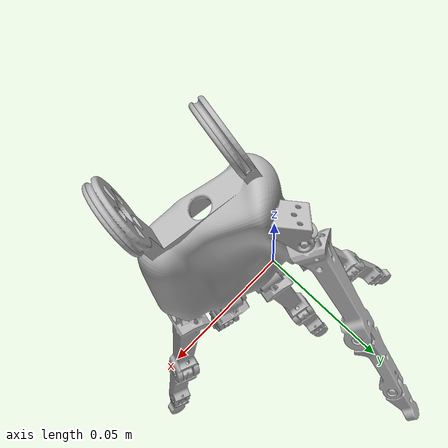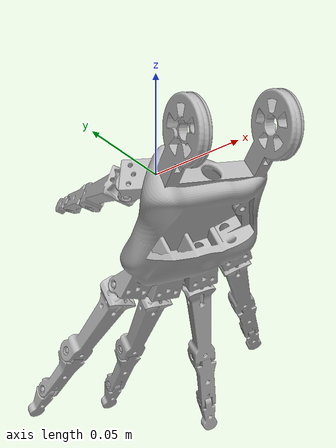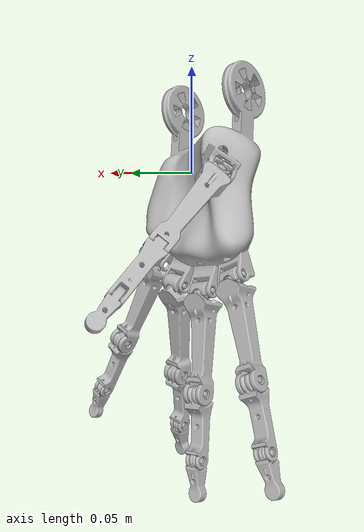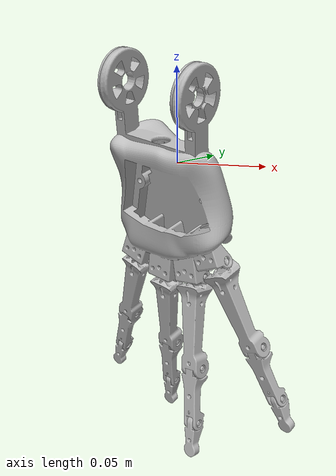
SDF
<?xml version="1.0" ?>
<sdf version="1.6">
	<model name="handsdf_little_joint">
		<link name="palm">
			<pose frame="">0.004984601526114004 -0.020451586372611737 -0.011102061228742403 0.0 -0.0 0.0</pose>
			<inertial>
				<pose frame="">0.0 0.0 0.0 0 0 0</pose>
				<mass>0.05104296674888116</mass>
				<inertia>
					<ixx>6.88767147280121e-05</ixx>
					<ixy>9.080454621344715e-06</ixy>
					<ixz>-3.329987766859981e-06</ixz>
					<iyy>6.130512140770738e-05</iyy>
					<iyz>4.068338533501781e-06</iyz>
					<izz>4.6209817158622484e-05</izz>
				</inertia>
			</inertial>
			<collision name="palm_collision">
				<geometry>
					<mesh>
						<uri>model://handsdf_little_joint/meshes/CAD/palm.stl</uri>
						<scale>0.001 0.001 0.001</scale>
					</mesh>
				</geometry>
			</collision>
			<visual name="palm_visual">
				<geometry>
					<mesh>
						<uri>model://handsdf_little_joint/meshes/CAD/palm.stl</uri>
						<scale>0.001 0.001 0.001</scale>
					</mesh>
				</geometry>
			</visual>
		</link>
		<link name="limb0_ring">
			<pose frame="">-0.004539129254911334 -0.0003668220879138213 0.0054368696911774005 0.0 -0.0 0.0</pose>
			<inertial>
				<pose frame="">0.0 0.0 0.0 0 0 0</pose>
				<mass>0.0008540175661180755</mass>
				<inertia>
					<ixx>2.954916758886377e-06</ixx>
					<ixy>1.605119337956974e-07</ixy>
					<ixz>-5.601010670979503e-07</ixz>
					<iyy>3.0782142974773858e-06</iyy>
					<iyz>8.053766686635486e-07</iyz>
					<izz>3.545731671569924e-07</izz>
				</inertia>
			</inertial>
			<collision name="limb0_ring_collision">
				<geometry>
					<mesh>
						<uri>model://handsdf_little_joint/meshes/CAD/limb0_ring.stl</uri>
						<scale>0.001 0.001 0.001</scale>
					</mesh>
				</geometry>
			</collision>
			<visual name="limb0_ring_visual">
				<geometry>
					<mesh>
						<uri>model://handsdf_little_joint/meshes/CAD/limb0_ring.stl</uri>
						<scale>0.001 0.001 0.001</scale>
					</mesh>
				</geometry>
			</visual>
		</link>
		<link name="limb1_ring">
			<pose frame="">-0.00429101528683431 -0.0016462373214088757 -0.019345291313069037 0.0 -0.0 0.0</pose>
			<inertial>
				<pose frame="">0.0 0.0 0.0 0 0 0</pose>
				<mass>0.007658532328641807</mass>
				<inertia>
					<ixx>5.5142187218362905e-05</ixx>
					<ixy>1.8813982075867667e-06</ixy>
					<ixz>-9.198141882949416e-06</ixz>
					<iyy>5.580409596394925e-05</iyy>
					<iyz>1.0823274307341091e-05</iyz>
					<izz>3.9835824924935855e-06</izz>
				</inertia>
			</inertial>
			<collision name="limb1_ring_collision">
				<geometry>
					<mesh>
						<uri>model://handsdf_little_joint/meshes/CAD/limb1_ring.stl</uri>
						<scale>0.001 0.001 0.001</scale>
					</mesh>
				</geometry>
			</collision>
			<visual name="limb1_ring_visual">
				<geometry>
					<mesh>
						<uri>model://handsdf_little_joint/meshes/CAD/limb1_ring.stl</uri>
						<scale>0.001 0.001 0.001</scale>
					</mesh>
				</geometry>
			</visual>
		</link>
		<link name="limb2_ring">
			<pose frame="">-0.0038302754690283957 -0.0035113032705045366 -0.05901680866458576 0.0 -0.0 0.0</pose>
			<inertial>
				<pose frame="">0.0 0.0 0.0 0 0 0</pose>
				<mass>0.0032495164973296822</mass>
				<inertia>
					<ixx>4.9515163556474885e-05</ixx>
					<ixy>1.1041368442102801e-06</ixy>
					<ixz>-7.298613785007262e-06</ixz>
					<iyy>4.9527692638290854e-05</iyy>
					<iyz>7.321160783007061e-06</iyz>
					<izz>2.252341984009396e-06</izz>
				</inertia>
			</inertial>
			<collision name="limb2_ring_collision">
				<geometry>
					<mesh>
						<uri>model://handsdf_little_joint/meshes/CAD/limb2_ring.stl</uri>
						<scale>0.001 0.001 0.001</scale>
					</mesh>
				</geometry>
			</collision>
			<visual name="limb2_ring_visual">
				<geometry>
					<mesh>
						<uri>model://handsdf_little_joint/meshes/CAD/limb2_ring.stl</uri>
						<scale>0.001 0.001 0.001</scale>
					</mesh>
				</geometry>
			</visual>
		</link>
		<link name="limb3_ring">
			<pose frame="">-0.0035342233075134574 -0.004990164199782871 -0.08609010682377048 0.0 -0.0 0.0</pose>
			<inertial>
				<pose frame="">0.0 0.0 0.0 0 0 0</pose>
				<mass>0.0013887432055078588</mass>
				<inertia>
					<ixx>3.135191675923352e-05</ixx>
					<ixy>5.740312301048307e-07</ixy>
					<ixz>-4.4061633164182545e-06</ixz>
					<iyy>3.124204490389505e-05</iyy>
					<iyz>4.003207017684753e-06</iyz>
					<izz>1.1638733590223661e-06</izz>
				</inertia>
			</inertial>
			<collision name="limb3_ring_collision">
				<geometry>
					<mesh>
						<uri>model://handsdf_little_joint/meshes/CAD/limb3_ring.stl</uri>
						<scale>0.001 0.001 0.001</scale>
					</mesh>
				</geometry>
			</collision>
			<visual name="limb3_ring_visual">
				<geometry>
					<mesh>
						<uri>model://handsdf_little_joint/meshes/CAD/limb3_ring.stl</uri>
						<scale>0.001 0.001 0.001</scale>
					</mesh>
				</geometry>
			</visual>
		</link>
		<link name="limb2_little">
			<pose frame="">0.00013526155536257645 -0.0004397681517196 -0.05379223216886111 0.0 -0.0 0.0</pose>
			<inertial>
				<pose frame="">0.0 0.0 0.0 0 0 0</pose>
				<mass>0.0032495809266408745</mass>
				<inertia>
					<ixx>3.706300347538381e-05</ixx>
					<ixy>1.632465112118096e-06</ixy>
					<ixz>-3.113838412584047e-06</ixz>
					<iyy>4.680450209403673e-05</iyy>
					<iyz>1.9179611153475863e-05</iyz>
					<izz>1.0326071354836933e-05</izz>
				</inertia>
			</inertial>
			<collision name="limb2_little_collision">
				<geometry>
					<mesh>
						<uri>model://handsdf_little_joint/meshes/CAD/limb2_little.stl</uri>
						<scale>0.001 0.001 0.001</scale>
					</mesh>
				</geometry>
			</collision>
			<visual name="limb2_little_visual">
				<geometry>
					<mesh>
						<uri>model://handsdf_little_joint/meshes/CAD/limb2_little.stl</uri>
						<scale>0.001 0.001 0.001</scale>
					</mesh>
				</geometry>
			</visual>
		</link>
		<link name="limb3_little">
			<pose frame="">0.0034599592882513432 0.00040926305136660936 -0.08018430986239933 0.0 -0.0 0.0</pose>
			<inertial>
				<pose frame="">0.0 0.0 0.0 0 0 0</pose>
				<mass>0.0013887322424558268</mass>
				<inertia>
					<ixx>2.387535956216425e-05</ixx>
					<ixy>4.6263297304672323e-07</ixy>
					<ixz>-9.253108353024493e-07</ixz>
					<iyy>2.9780948903665597e-05</iyy>
					<iyz>1.1898865170335488e-05</iyz>
					<izz>5.9877014374985554e-06</izz>
				</inertia>
			</inertial>
			<collision name="limb3_little_collision">
				<geometry>
					<mesh>
						<uri>model://handsdf_little_joint/meshes/CAD/limb3_little.stl</uri>
						<scale>0.001 0.001 0.001</scale>
					</mesh>
				</geometry>
			</collision>
			<visual name="limb3_little_visual">
				<geometry>
					<mesh>
						<uri>model://handsdf_little_joint/meshes/CAD/limb3_little.stl</uri>
						<scale>0.001 0.001 0.001</scale>
					</mesh>
				</geometry>
			</visual>
		</link>
		<link name="limb1_little">
			<pose frame="">-0.0047292031566071435 -0.001852416538666387 -0.015069742238488955 0.0 -0.0 0.0</pose>
			<inertial>
				<pose frame="">0.0 0.0 0.0 0 0 0</pose>
				<mass>0.007872477963678678</mass>
				<inertia>
					<ixx>4.108684866684311e-05</ixx>
					<ixy>4.789823047519311e-06</ixy>
					<ixz>-8.096322663823535e-06</ixz>
					<iyy>5.2314455255197046e-05</iyy>
					<iyz>2.2587067280915484e-05</iyz>
					<izz>1.5161020637743567e-05</izz>
				</inertia>
			</inertial>
			<collision name="limb1_little_collision">
				<geometry>
					<mesh>
						<uri>model://handsdf_little_joint/meshes/CAD/limb1_little.stl</uri>
						<scale>0.001 0.001 0.001</scale>
					</mesh>
				</geometry>
			</collision>
			<visual name="limb1_little_visual">
				<geometry>
					<mesh>
						<uri>model://handsdf_little_joint/meshes/CAD/limb1_little.stl</uri>
						<scale>0.001 0.001 0.001</scale>
					</mesh>
				</geometry>
			</visual>
		</link>
		<link name="limb0_thumb">
			<pose frame="">0.028678623050363408 0.0028113172419237283 0.02270946300735899 0.0 -0.0 0.0</pose>
			<inertial>
				<pose frame="">0.0 0.0 0.0 0 0 0</pose>
				<mass>0.0008539394855143175</mass>
				<inertia>
					<ixx>1.65419460411655e-08</ixx>
					<ixy>-1.5582638298769582e-09</ixy>
					<ixz>-1.1980629146009014e-09</ixz>
					<iyy>2.1330956514292893e-07</iyy>
					<iyz>2.0608809000839315e-08</iyz>
					<izz>2.1210532015869758e-07</izz>
				</inertia>
			</inertial>
			<collision name="limb0_thumb_collision">
				<geometry>
					<mesh>
						<uri>model://handsdf_little_joint/meshes/CAD/limb0_thumb.stl</uri>
						<scale>0.001 0.001 0.001</scale>
					</mesh>
				</geometry>
			</collision>
			<visual name="limb0_thumb_visual">
				<geometry>
					<mesh>
						<uri>model://handsdf_little_joint/meshes/CAD/limb0_thumb.stl</uri>
						<scale>0.001 0.001 0.001</scale>
					</mesh>
				</geometry>
			</visual>
		</link>
		<link name="limb1_thumb">
			<pose frame="">0.029667654903979483 0.008995597332951424 0.001151545080354291 0.0 -0.0 0.0</pose>
			<inertial>
				<pose frame="">0.0 0.0 0.0 0 0 0</pose>
				<mass>0.007658975604773872</mass>
				<inertia>
					<ixx>6.142309255749762e-06</ixx>
					<ixy>1.64821564660618e-06</ixy>
					<ixz>2.805655938853583e-06</ixz>
					<iyy>3.2755098881905906e-06</iyy>
					<iyz>-1.0949658111697038e-06</iyz>
					<izz>5.368884931167643e-06</izz>
				</inertia>
			</inertial>
			<collision name="limb1_thumb_collision">
				<geometry>
					<mesh>
						<uri>model://handsdf_little_joint/meshes/CAD/limb1_thumb.stl</uri>
						<scale>0.001 0.001 0.001</scale>
					</mesh>
				</geometry>
			</collision>
			<visual name="limb1_thumb_visual">
				<geometry>
					<mesh>
						<uri>model://handsdf_little_joint/meshes/CAD/limb1_thumb.stl</uri>
						<scale>0.001 0.001 0.001</scale>
					</mesh>
				</geometry>
			</visual>
		</link>
		<link name="limb2_thumb">
			<pose frame="">0.03149313575494694 0.018880959203335886 -0.03335283603378934 0.0 -0.0 0.0</pose>
			<inertial>
				<pose frame="">0.0 0.0 0.0 0 0 0</pose>
				<mass>0.003249549630804767</mass>
				<inertia>
					<ixx>1.316945992326289e-05</ixx>
					<ixy>1.0918687131823073e-06</ixy>
					<ixz>6.2572329512091364e-06</ixz>
					<iyy>4.766538112900225e-06</iyy>
					<iyz>-8.003429119878388e-07</iyz>
					<izz>8.744453815883072e-06</izz>
				</inertia>
			</inertial>
			<collision name="limb2_thumb_collision">
				<geometry>
					<mesh>
						<uri>model://handsdf_little_joint/meshes/CAD/limb2_thumb.stl</uri>
						<scale>0.001 0.001 0.001</scale>
					</mesh>
				</geometry>
			</collision>
			<visual name="limb2_thumb_visual">
				<geometry>
					<mesh>
						<uri>model://handsdf_little_joint/meshes/CAD/limb2_thumb.stl</uri>
						<scale>0.001 0.001 0.001</scale>
					</mesh>
				</geometry>
			</visual>
		</link>
		<link name="limb3_thumb">
			<pose frame="">0.03269025903422575 0.025525394700875323 -0.05687059153548137 0.0 -0.0 0.0</pose>
			<inertial>
				<pose frame="">0.0 0.0 0.0 0 0 0</pose>
				<mass>0.001388734475230686</mass>
				<inertia>
					<ixx>1.1235760113522968e-05</ixx>
					<ixy>3.1577711670219323e-07</ixy>
					<ixz>5.369100376425037e-06</ixz>
					<iyy>3.999262022821707e-06</iyy>
					<iyz>-2.340579167620669e-07</iyz>
					<izz>7.274227576226517e-06</izz>
				</inertia>
			</inertial>
			<collision name="limb3_thumb_collision">
				<geometry>
					<mesh>
						<uri>model://handsdf_little_joint/meshes/CAD/limb3_thumb.stl</uri>
						<scale>0.001 0.001 0.001</scale>
					</mesh>
				</geometry>
			</collision>
			<visual name="limb3_thumb_visual">
				<geometry>
					<mesh>
						<uri>model://handsdf_little_joint/meshes/CAD/limb3_thumb.stl</uri>
						<scale>0.001 0.001 0.001</scale>
					</mesh>
				</geometry>
			</visual>
		</link>
		<link name="limb0_index">
			<pose frame="">0.0029919599848585235 0.0020183478659378403 0.007894010765365203 0.0 -0.0 0.0</pose>
			<inertial>
				<pose frame="">0.0 0.0 0.0 0 0 0</pose>
				<mass>0.0008541597354660968</mass>
				<inertia>
					<ixx>2.181524289515269e-06</ixx>
					<ixy>-7.526321297728314e-08</ixy>
					<ixz>-1.81335018230354e-07</ixz>
					<iyy>2.5489233804472583e-06</iyy>
					<iyz>-9.005499643071503e-07</iyz>
					<izz>4.0661548925156065e-07</izz>
				</inertia>
			</inertial>
			<collision name="limb0_index_collision">
				<geometry>
					<mesh>
						<uri>model://handsdf_little_joint/meshes/CAD/limb0_index.stl</uri>
						<scale>0.001 0.001 0.001</scale>
					</mesh>
				</geometry>
			</collision>
			<visual name="limb0_index_visual">
				<geometry>
					<mesh>
						<uri>model://handsdf_little_joint/meshes/CAD/limb0_index.stl</uri>
						<scale>0.001 0.001 0.001</scale>
					</mesh>
				</geometry>
			</visual>
		</link>
		<link name="limb1_index">
			<pose frame="">-0.00011577624540808407 0.004303377209592056 -0.015885670423960562 0.0 -0.0 0.0</pose>
			<inertial>
				<pose frame="">0.0 0.0 0.0 0 0 0</pose>
				<mass>0.007658917100650444</mass>
				<inertia>
					<ixx>4.119292903135489e-05</ixx>
					<ixy>1.0423170862588538e-06</ixy>
					<ixz>2.4502021674558814e-06</ixz>
					<iyy>4.823186955127905e-05</iyy>
					<iyz>-1.726465837945741e-05</iyz>
					<izz>7.732441848985939e-06</izz>
				</inertia>
			</inertial>
			<collision name="limb1_index_collision">
				<geometry>
					<mesh>
						<uri>model://handsdf_little_joint/meshes/CAD/limb1_index.stl</uri>
						<scale>0.001 0.001 0.001</scale>
					</mesh>
				</geometry>
			</collision>
			<visual name="limb1_index_visual">
				<geometry>
					<mesh>
						<uri>model://handsdf_little_joint/meshes/CAD/limb1_index.stl</uri>
						<scale>0.001 0.001 0.001</scale>
					</mesh>
				</geometry>
			</visual>
		</link>
		<link name="limb2_index">
			<pose frame="">-0.00506806433829853 0.008174175653905207 -0.05386535352010406 0.0 -0.0 0.0</pose>
			<inertial>
				<pose frame="">0.0 0.0 0.0 0 0 0</pose>
				<mass>0.003249598311090094</mass>
				<inertia>
					<ixx>3.784390786695967e-05</ixx>
					<ixy>2.4885127073033454e-06</ixy>
					<ixz>5.842399424834629e-06</ixz>
					<iyy>4.3600199962235486e-05</iyy>
					<iyz>-1.5703029423510573e-05</iyz>
					<izz>7.656036647045606e-06</izz>
				</inertia>
			</inertial>
			<collision name="limb2_index_collision">
				<geometry>
					<mesh>
						<uri>model://handsdf_little_joint/meshes/CAD/limb2_index.stl</uri>
						<scale>0.001 0.001 0.001</scale>
					</mesh>
				</geometry>
			</collision>
			<visual name="limb2_index_visual">
				<geometry>
					<mesh>
						<uri>model://handsdf_little_joint/meshes/CAD/limb2_index.stl</uri>
						<scale>0.001 0.001 0.001</scale>
					</mesh>
				</geometry>
			</visual>
		</link>
		<link name="limb3_index">
			<pose frame="">-0.008464650348251558 0.010612438769244762 -0.07980788015398478 0.0 -0.0 0.0</pose>
			<inertial>
				<pose frame="">0.0 0.0 0.0 0 0 0</pose>
				<mass>0.0013887644317063248</mass>
				<inertia>
					<ixx>2.4332206617631594e-05</ixx>
					<ixy>1.9665326219483167e-06</ixy>
					<ixz>4.6056129787097686e-06</ixz>
					<iyy>2.7695215422285348e-05</iyy>
					<iyz>-9.99859303690574e-06</iyz>
					<izz>5.1843011163931765e-06</izz>
				</inertia>
			</inertial>
			<collision name="limb3_index_collision">
				<geometry>
					<mesh>
						<uri>model://handsdf_little_joint/meshes/CAD/limb3_index.stl</uri>
						<scale>0.001 0.001 0.001</scale>
					</mesh>
				</geometry>
			</collision>
			<visual name="limb3_index_visual">
				<geometry>
					<mesh>
						<uri>model://handsdf_little_joint/meshes/CAD/limb3_index.stl</uri>
						<scale>0.001 0.001 0.001</scale>
					</mesh>
				</geometry>
			</visual>
		</link>
		<link name="limb0_middle">
			<pose frame="">-0.0010005707852920617 0.0013252851129057404 0.005030067146377362 0.0 -0.0 0.0</pose>
			<inertial>
				<pose frame="">0.0 0.0 0.0 0 0 0</pose>
				<mass>0.0008540846275341209</mass>
				<inertia>
					<ixx>2.9998026815526246e-06</ixx>
					<ixy>-1.5130488392045815e-08</ixy>
					<ixz>-3.167534563800742e-07</ixz>
					<iyy>2.97891198180267e-06</iyy>
					<iyz>-1.5018474746604502e-07</iyz>
					<izz>5.599045185478959e-08</izz>
				</inertia>
			</inertial>
			<collision name="limb0_middle_collision">
				<geometry>
					<mesh>
						<uri>model://handsdf_little_joint/meshes/CAD/limb0_middle.stl</uri>
						<scale>0.001 0.001 0.001</scale>
					</mesh>
				</geometry>
			</collision>
			<visual name="limb0_middle_visual">
				<geometry>
					<mesh>
						<uri>model://handsdf_little_joint/meshes/CAD/limb0_middle.stl</uri>
						<scale>0.001 0.001 0.001</scale>
					</mesh>
				</geometry>
			</visual>
		</link>
		<link name="limb1_middle">
			<pose frame="">-0.002093046247519113 0.0032912602190693714 -0.01941735395253288 0.0 -0.0 0.0</pose>
			<inertial>
				<pose frame="">0.0 0.0 0.0 0 0 0</pose>
				<mass>0.007658427299380988</mass>
				<inertia>
					<ixx>5.3821898465792716e-05</ixx>
					<ixy>9.196368996891487e-08</ixy>
					<ixz>8.043095606228669e-07</ixz>
					<iyy>5.401986147571667e-05</iyy>
					<iyz>-4.1868935383198495e-06</iyz>
					<izz>6.19023319976134e-07</izz>
				</inertia>
			</inertial>
			<collision name="limb1_middle_collision">
				<geometry>
					<mesh>
						<uri>model://handsdf_little_joint/meshes/CAD/limb1_middle.stl</uri>
						<scale>0.001 0.001 0.001</scale>
					</mesh>
				</geometry>
			</collision>
			<visual name="limb1_middle_visual">
				<geometry>
					<mesh>
						<uri>model://handsdf_little_joint/meshes/CAD/limb1_middle.stl</uri>
						<scale>0.001 0.001 0.001</scale>
					</mesh>
				</geometry>
			</visual>
		</link>
		<link name="limb2_middle">
			<pose frame="">-0.003798690734159633 0.0066480256095722305 -0.05847269263554183 0.0 -0.0 0.0</pose>
			<inertial>
				<pose frame="">0.0 0.0 0.0 0 0 0</pose>
				<mass>0.0032495923523524206</mass>
				<inertia>
					<ixx>4.761369812236897e-05</ixx>
					<ixy>4.599979909128627e-07</ixy>
					<ixz>4.803144382964503e-06</ixz>
					<iyy>4.7546672758656653e-05</iyy>
					<iyz>-4.486660371573696e-06</iyz>
					<izz>9.619258572204316e-07</izz>
				</inertia>
			</inertial>
			<collision name="limb2_middle_collision">
				<geometry>
					<mesh>
						<uri>model://handsdf_little_joint/meshes/CAD/limb2_middle.stl</uri>
						<scale>0.001 0.001 0.001</scale>
					</mesh>
				</geometry>
			</collision>
			<visual name="limb2_middle_visual">
				<geometry>
					<mesh>
						<uri>model://handsdf_little_joint/meshes/CAD/limb2_middle.stl</uri>
						<scale>0.001 0.001 0.001</scale>
					</mesh>
				</geometry>
			</visual>
		</link>
		<link name="limb3_middle">
			<pose frame="">-0.004979246527368786 0.008735424089327452 -0.08514939864736558 0.0 -0.0 0.0</pose>
			<inertial>
				<pose frame="">0.0 0.0 0.0 0 0 0</pose>
				<mass>0.00138874251823748</mass>
				<inertia>
					<ixx>3.0114934818637196e-05</ixx>
					<ixy>4.137036509029164e-07</ixy>
					<ixz>4.032232275526246e-06</ixz>
					<iyy>2.9875445975654516e-05</iyy>
					<iyz>-3.031204468169728e-06</iyz>
					<izz>8.704378876513013e-07</izz>
				</inertia>
			</inertial>
			<collision name="limb3_middle_collision">
				<geometry>
					<mesh>
						<uri>model://handsdf_little_joint/meshes/CAD/limb3_middle.stl</uri>
						<scale>0.001 0.001 0.001</scale>
					</mesh>
				</geometry>
			</collision>
			<visual name="limb3_middle_visual">
				<geometry>
					<mesh>
						<uri>model://handsdf_little_joint/meshes/CAD/limb3_middle.stl</uri>
						<scale>0.001 0.001 0.001</scale>
					</mesh>
				</geometry>
			</visual>
		</link>
		<joint name="joint0_thumb" type="revolute">
			<parent>limb0_thumb</parent>
			<child>limb1_thumb</child>
			<pose frame="">-0.04707254233272256 -0.008286461236286747 0.002279365543837149 0 0 0</pose>
			<axis>
				<xyz>-0.6858892915424489 0.06301009669154323 0.7249728322236222</xyz>
				<limit>
					<lower>-0.3141592653589793</lower>
					<upper>0.3141592653589793</upper>
				</limit>
				<use_parent_model_frame>0</use_parent_model_frame>
			</axis>
		</joint>
		<joint name="joint1_thumb" type="revolute">
			<parent>limb1_thumb</parent>
			<child>limb2_thumb</child>
			<pose frame="">-0.0352364742491571 0.02319464294574498 0.006635434009456494 0 0 0</pose>
			<axis>
				<xyz>-0.6933027206770837 -0.3592782442559522 -0.6247003127149227</xyz>
				<limit>
					<lower>-1.9198621771937625</lower>
					<upper>-0.0</upper>
				</limit>
				<use_parent_model_frame>0</use_parent_model_frame>
			</axis>
		</joint>
		<joint name="joint2_thumb" type="revolute">
			<parent>limb2_thumb</parent>
			<child>limb3_thumb</child>
			<pose frame="">-0.033721479895762504 0.04139282484118512 0.010454575243259488 0 0 0</pose>
			<axis>
				<xyz>-0.6933027206770837 -0.3592782442559522 -0.6247003127149227</xyz>
				<limit>
					<lower>-1.2217304763960306</lower>
					<upper>-0.0</upper>
				</limit>
				<use_parent_model_frame>0</use_parent_model_frame>
			</axis>
		</joint>
		<joint name="joint0_index" type="revolute">
			<parent>limb0_index</parent>
			<child>limb1_index</child>
			<pose frame="">-0.021270161596243946 -0.011343847901591927 -0.03441368744543821 0 0 0</pose>
			<axis>
				<xyz>-0.02206827427210914 -0.9810707726476965 0.1923879682493538</xyz>
				<limit>
					<lower>-0.3141592653589793</lower>
					<upper>0.3141592653589793</upper>
				</limit>
				<use_parent_model_frame>0</use_parent_model_frame>
			</axis>
		</joint>
		<joint name="joint1_index" type="revolute">
			<parent>limb1_index</parent>
			<child>limb2_index</child>
			<pose frame="">-0.040048727408088354 0.006207552154610401 -0.03867946768994456 0 0 0</pose>
			<axis>
				<xyz>0.8982158988804239 -0.10395584540887667 -0.4270847470979925</xyz>
				<limit>
					<lower>-1.9198621771937625</lower>
					<upper>-0.0</upper>
				</limit>
				<use_parent_model_frame>0</use_parent_model_frame>
			</axis>
		</joint>
		<joint name="joint2_index" type="revolute">
			<parent>limb2_index</parent>
			<child>limb3_index</child>
			<pose frame="">-0.04738319364263051 0.013298410978903752 -0.041137416014205494 0 0 0</pose>
			<axis>
				<xyz>0.8982158988804239 -0.10395584540887667 -0.4270847470979925</xyz>
				<limit>
					<lower>-1.2217304763960306</lower>
					<upper>-0.0</upper>
				</limit>
				<use_parent_model_frame>0</use_parent_model_frame>
			</axis>
		</joint>
		<joint name="joint0_middle" type="revolute">
			<parent>limb0_middle</parent>
			<child>limb1_middle</child>
			<pose frame="">-0.0014649936655799795 -0.012380060837754161 -0.03940960128435354 0 0 0</pose>
			<axis>
				<xyz>-0.14459522599906896 -0.9616712141317322 0.23298218071062712</xyz>
				<limit>
					<lower>-0.3141592653589793</lower>
					<upper>0.3141592653589793</upper>
				</limit>
				<use_parent_model_frame>0</use_parent_model_frame>
			</axis>
		</joint>
		<joint name="joint1_middle" type="revolute">
			<parent>limb1_middle</parent>
			<child>limb2_middle</child>
			<pose frame="">-0.010951397099223428 0.004120951479165678 -0.04817841880280976 0 0 0</pose>
			<axis>
				<xyz>0.9631532961190306 -0.19075270735641842 -0.1896025654131407</xyz>
				<limit>
					<lower>-1.9198621771937625</lower>
					<upper>-0.0</upper>
				</limit>
				<use_parent_model_frame>0</use_parent_model_frame>
			</axis>
		</joint>
		<joint name="joint2_middle" type="revolute">
			<parent>limb2_middle</parent>
			<child>limb3_middle</child>
			<pose frame="">-0.012624087283465446 0.010200617380137984 -0.052123676670785 0 0 0</pose>
			<axis>
				<xyz>0.9631532961190306 -0.19075270735641842 -0.1896025654131407</xyz>
				<limit>
					<lower>-1.2217304763960306</lower>
					<upper>-0.0</upper>
				</limit>
				<use_parent_model_frame>0</use_parent_model_frame>
			</axis>
		</joint>
		<joint name="palm_ring" type="revolute">
			<parent>palm</parent>
			<child>limb0_ring</child>
			<pose frame="">0.013692663285176954 -0.009211153081474991 -0.06418923009178881 0 0 0</pose>
			<axis>
				<xyz>-0.9624533879132147 0.2645500875313659 -0.060800717771566315</xyz>
				<limit>
					<lower>-0.3490658503988659</lower>
					<upper>1.2217304763960306</upper>
				</limit>
				<use_parent_model_frame>0</use_parent_model_frame>
			</axis>
		</joint>
		<joint name="palm_middle" type="revolute">
			<parent>palm</parent>
			<child>limb0_middle</child>
			<pose frame="">0.0050999662710829 -0.008959717394368462 -0.06597798816599418 0 0 0</pose>
			<axis>
				<xyz>0.9631532961190401 -0.1907527073564135 -0.18960256541314202</xyz>
				<limit>
					<lower>-0.3490658503988659</lower>
					<upper>1.2217304763960306</upper>
				</limit>
				<use_parent_model_frame>0</use_parent_model_frame>
			</axis>
		</joint>
		<joint name="palm_index" type="revolute">
			<parent>palm</parent>
			<child>limb0_index</child>
			<pose frame="">-0.03104831224529698 -0.005335937399428218 -0.0555673969362763 0 0 0</pose>
			<axis>
				<xyz>-0.8982158988804323 0.10395584540887517 0.42708474709799904</xyz>
				<limit>
					<lower>-0.3490658503988659</lower>
					<upper>1.2217304763960306</upper>
				</limit>
				<use_parent_model_frame>0</use_parent_model_frame>
			</axis>
		</joint>
		<joint name="palm_thumb" type="revolute">
			<parent>palm</parent>
			<child>limb0_thumb</child>
			<pose frame="">-0.03959300502855796 0.0024294379229749612 -0.017669898406447507 0 0 0</pose>
			<axis>
				<xyz>0.5910450101228157 0.6294199144411767 0.5044763297854356</xyz>
				<limit>
					<lower>-0.3490658503988659</lower>
					<upper>1.2217304763960306</upper>
				</limit>
				<use_parent_model_frame>0</use_parent_model_frame>
			</axis>
		</joint>
		<joint name="palm_little" type="revolute">
			<parent>palm</parent>
			<child>limb1_little</child>
			<pose frame="">0.029944540426360383 -0.014487705985137609 -0.03472282481231472 0 0 0</pose>
			<axis>
				<xyz>-0.89616387185053 0.32031881643074644 -0.3070605325180794</xyz>
				<limit>
					<lower>-0.3490658503988659</lower>
					<upper>1.2217304763960306</upper>
				</limit>
				<use_parent_model_frame>0</use_parent_model_frame>
			</axis>
		</joint>
		<joint name="joint0_ring" type="revolute">
			<parent>limb0_ring</parent>
			<child>limb1_ring</child>
			<pose frame="">0.019905409835050885 -0.012287020038080384 -0.03727662349748967 0 0 0</pose>
			<axis>
				<xyz>-0.25251329713267223 -0.7903855112050759 0.5581467355886695</xyz>
				<limit>
					<lower>-0.3141592653589793</lower>
					<upper>0.3141592653589793</upper>
				</limit>
				<use_parent_model_frame>0</use_parent_model_frame>
			</axis>
		</joint>
		<joint name="joint1_ring" type="revolute">
			<parent>limb1_ring</parent>
			<child>limb2_ring</child>
			<pose frame="">0.016971649795720373 -0.010791337035154273 -0.050524770881612585 0 0 0</pose>
			<axis>
				<xyz>0.9624533879132107 -0.2645500875313664 0.0608007177715672</xyz>
				<limit>
					<lower>-1.9198621771937625</lower>
					<upper>-0.0</upper>
				</limit>
				<use_parent_model_frame>0</use_parent_model_frame>
			</axis>
		</joint>
		<joint name="joint2_ring" type="revolute">
			<parent>limb2_ring</parent>
			<child>limb3_ring</child>
			<pose frame="">0.018986510026902454 -0.013795956112424035 -0.0548696953966447 0 0 0</pose>
			<axis>
				<xyz>0.9624533879132107 -0.2645500875313664 0.0608007177715672</xyz>
				<limit>
					<lower>-1.2217304763960306</lower>
					<upper>-0.0</upper>
				</limit>
				<use_parent_model_frame>0</use_parent_model_frame>
			</axis>
		</joint>
		<joint name="joint2_little" type="revolute">
			<parent>limb2_little</parent>
			<child>limb3_little</child>
			<pose frame="">0.05555389556573891 -0.004842651702874318 -0.044430831392775316 0 0 0</pose>
			<axis>
				<xyz>0.8961638718505175 -0.32031881643074994 0.30706053251807774</xyz>
				<limit>
					<lower>-1.2217304763960306</lower>
					<upper>-0.0</upper>
				</limit>
				<use_parent_model_frame>0</use_parent_model_frame>
			</axis>
		</joint>
		<joint name="join12_little" type="revolute">
			<parent>limb1_little</parent>
			<child>limb2_little</child>
			<pose frame="">0.04601451752033813 -0.007618486786376937 -0.04194519235113399 0 0 0</pose>
			<axis>
				<xyz>0.8961638718505175 -0.32031881643074994 0.30706053251807774</xyz>
				<limit>
					<lower>-0.3490658503988659</lower>
					<upper>1.2217304763960306</upper>
				</limit>
				<use_parent_model_frame>0</use_parent_model_frame>
			</axis>
		</joint>
		<plugin filename="libmyomuscle_plugin.so" name="myomuscle_plugin"/>
	</model>
</sdf>
